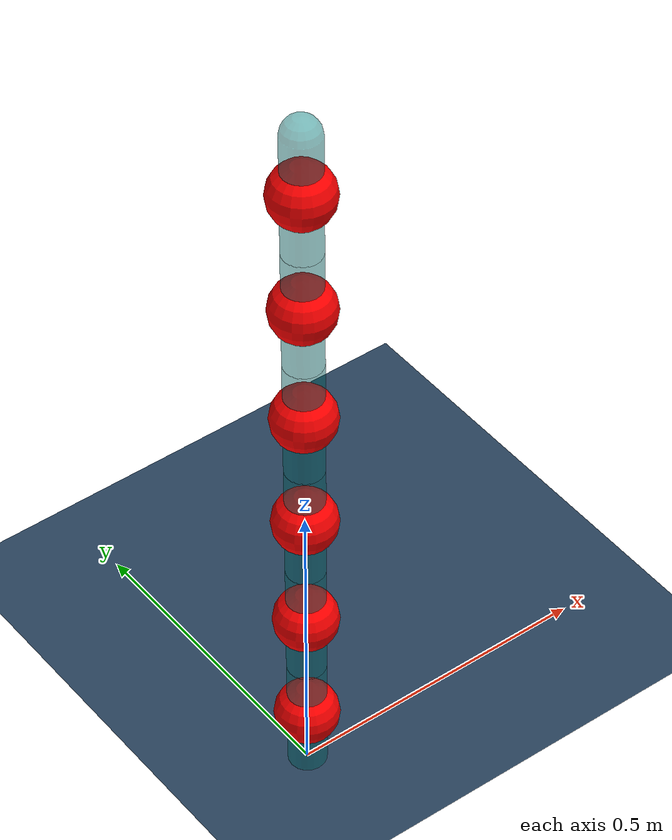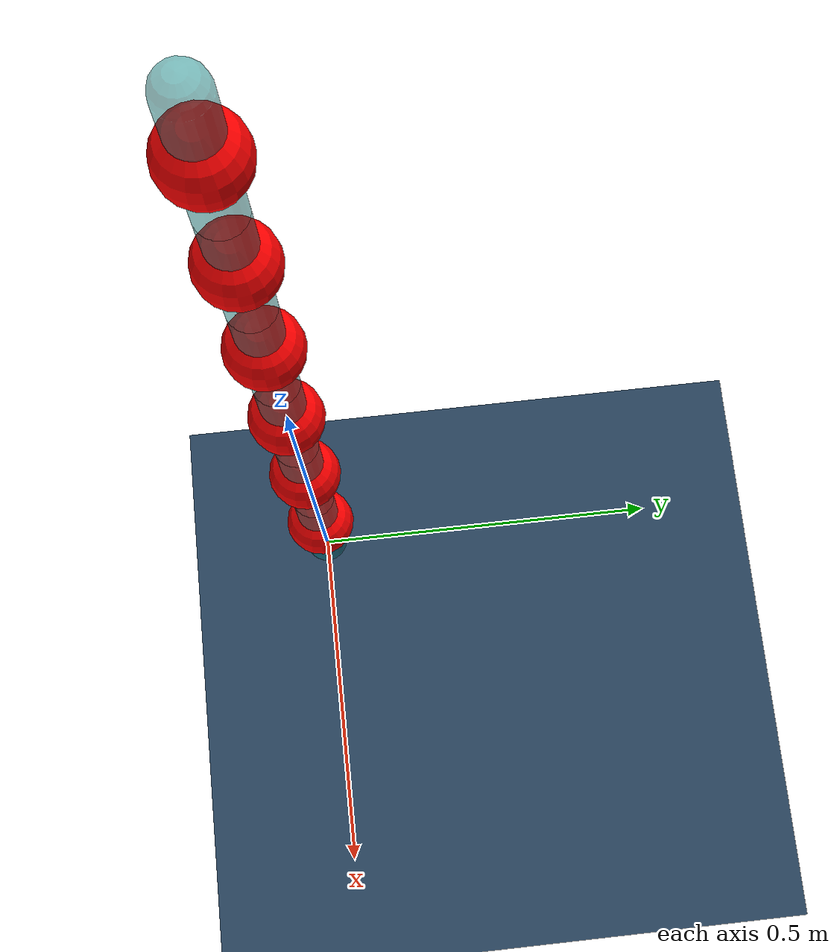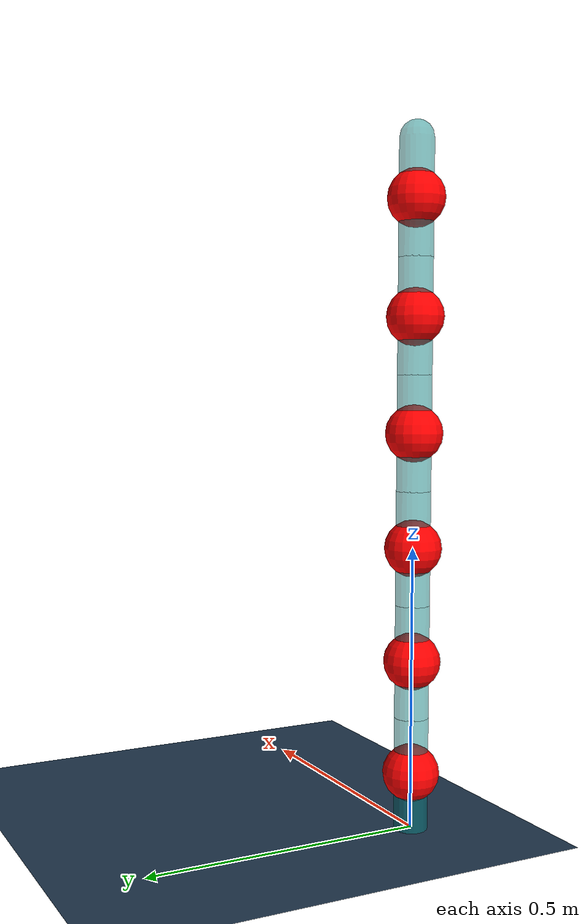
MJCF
<mujoco>
  <asset>
    <texture name="grid" type="2d" builtin="checker" rgb1=".1 .2 .3"
     rgb2=".2 .3 .4" width="300" height="300"/>
    <material name="grid" texture="grid" texrepeat="8 8" reflectance=".2"/>
  </asset>

  <option timestep=".01" integrator="RK4">
    <flag energy="enable" contact="disable"/>
  </option>

  <default>
    <joint type="hinge" pos="0 0 0" armature="0.1"/>
    <geom type="capsule" size=".03"/>
  </default>

  <worldbody>
    <light pos="0 -.4 2"/>
    <camera name="fixed" pos="0 -1 0" xyaxes="1 0 0 0 0 1"/>
    <geom name="floor" type="plane" pos="0 0 0" size="5 5 .1" material="grid"/>
    <body name="link_1" pos="0 0 0">
      <inertial pos="0 0 0.1" quat="1 0 0 0" mass="1" diaginertia="0.01 0.01 0.001" />
      <joint name='joint_1' axis="0 0 1"/>
      <geom fromto="0 0 0 0 0 .2" rgba="0 0.5 0.5 0.5"/>
      <site name="IMU1" pos="0 0 .1" size=".05" rgba="1 0 0 1"/>
      <body name="link_2" pos="0 0 .2">
        <inertial pos="0 0 0.1" quat="1 0 0 0" mass="1" diaginertia="0.01 0.01 0.001" />
        <joint name='joint_2' axis="1 0 0"/>
        <geom fromto="0 0 0 0 0 .2" rgba="0 0.5 0.5 0.5"/>
        <site name="IMU2" pos="0 0 .1" size=".05" rgba="1 0 0 1"/>
        <body name="link_3" pos="0 0 0.2">
            <inertial pos="0 0 0.1" quat="1 0 0 0" mass="1" diaginertia="0.01 0.01 0.001" />
            <joint name='joint_3' axis="0 0 1"/>
            <geom fromto="0 0 0 0 0 .2" rgba="0 0.5 0.5 0.5"/>
            <site name="IMU3" pos="0 0 .1" size=".05" rgba="1 0 0 1"/>
            <body name="link_4" pos="0 0 .2">
                <inertial pos="0 0 0.1" quat="1 0 0 0" mass="1" diaginertia="0.01 0.01 0.001" />
                <joint name='joint_4' axis="1 0 0"/>
                <geom fromto="0 0 0 0 0 .2" rgba="0 0.5 0.5 0.5"/>
                <site name="IMU4" pos="0 0 .1" size=".05" rgba="1 0 0 1"/>
                <body name="link_5" pos="0 0 0.2">
                    <inertial pos="0 0 0.1" quat="1 0 0 0" mass="1" diaginertia="0.01 0.01 0.001" />
                    <joint name='joint_5' axis="0 0 1"/>
                    <geom fromto="0 0 0 0 0 .2" rgba="0 0.5 0.5 0.5"/>
                    <site name="IMU5" pos="0 0 .1" size=".05" rgba="1 0 0 1"/>
                    <body name="link_6" pos="0 0 .2">
                        <inertial pos="0 0 0.1" quat="1 0 0 0" mass="1" diaginertia="0.01 0.01 0.001" />
                        <joint name='joint_6' axis="1 0 0"/>
                        <geom fromto="0 0 0 0 0 .2" rgba="0 0.5 0.5 0.5"/>
                        <site name="IMU6" pos="0 0 .1" size=".05" rgba="1 0 0 1"/>
                    </body>
                </body>
            </body>
        </body>
      </body>
    </body>
  </worldbody>

<actuator>
    <position name="actuator_1" joint="joint_1"/>
    <position name="actuator_2" joint="joint_2"/>
    <position name="actuator_3" joint="joint_3"/>
    <position name="actuator_4" joint="joint_4"/>
    <position name="actuator_5" joint="joint_5"/>
    <position name="actuator_6" joint="joint_6"/>
</actuator>

  <sensor>
    <accelerometer name="acc_1" site="IMU1"/>
    <accelerometer name="acc_2" site="IMU2"/>
    <accelerometer name="acc_3" site="IMU3"/>
    <accelerometer name="acc_4" site="IMU4"/>
    <accelerometer name="acc_5" site="IMU5"/>
    <accelerometer name="acc_6" site="IMU6"/>
    <gyro name="gyro_1" site="IMU1"/>
    <gyro name="gyro_2" site="IMU2"/>
    <gyro name="gyro_3" site="IMU3"/>
    <gyro name="gyro_4" site="IMU4"/>
    <gyro name="gyro_5" site="IMU5"/>
    <gyro name="gyro_6" site="IMU6"/>
    <magnetometer name="mag_1" site="IMU1"/>
    <magnetometer name="mag_2" site="IMU2"/>
    <magnetometer name="mag_3" site="IMU3"/>
    <magnetometer name="mag_4" site="IMU4"/>
    <magnetometer name="mag_5" site="IMU5"/>
    <magnetometer name="mag_6" site="IMU6"/>
  </sensor>

</mujoco>
